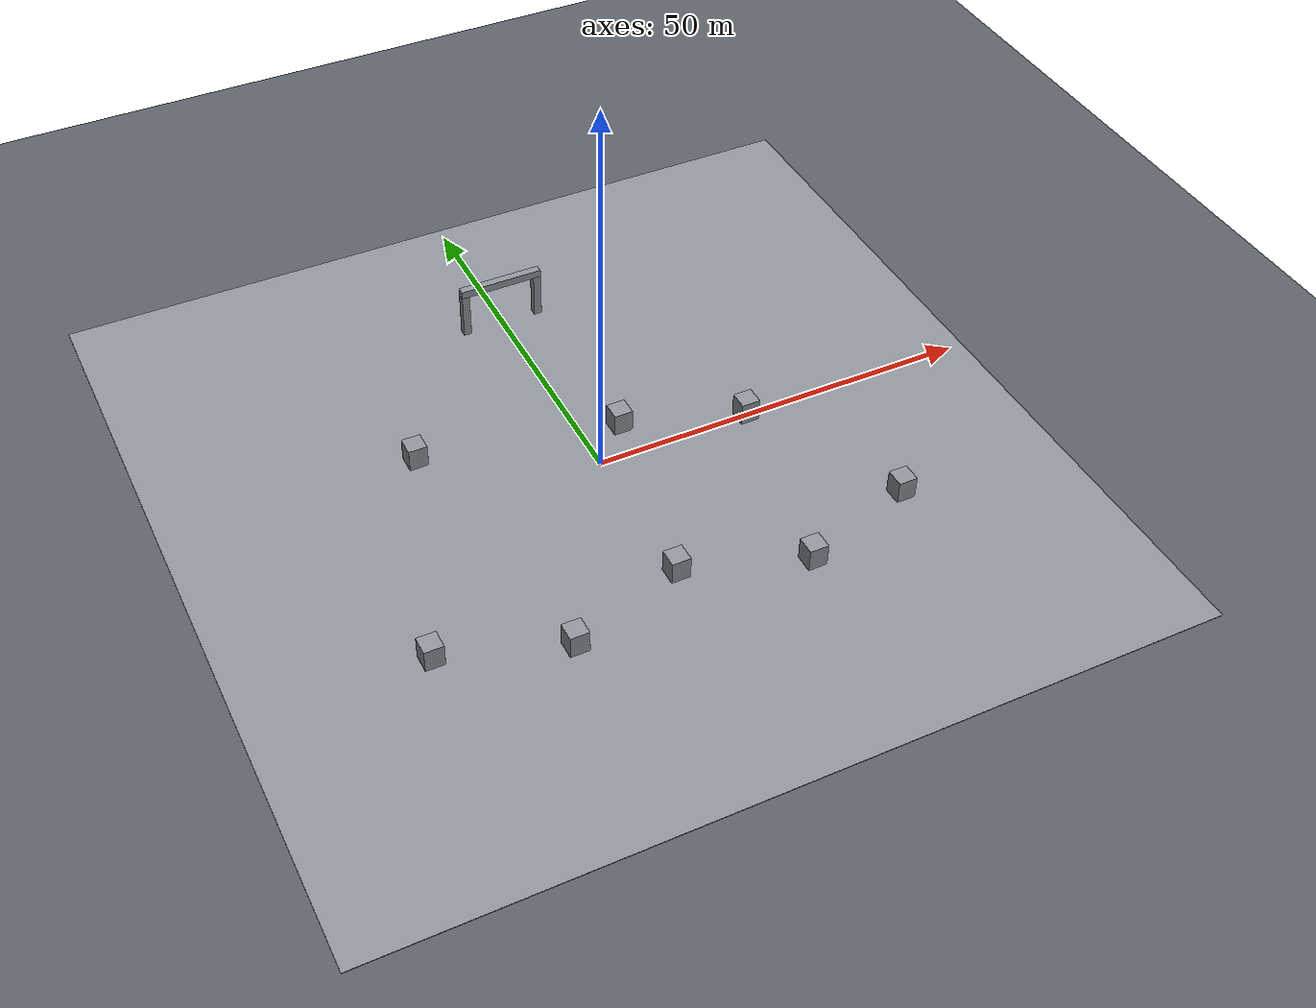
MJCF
<!-- Generated by robot_lab_maps/tools/gen_mjcf_worlds.py from
     maps/aerial_course/worlds/aerial_course.world - do not edit by hand. -->
<mujoco model="aerial_course">
  <option gravity="0 0 -9.81" />
  <compiler angle="radian" />
  <worldbody>
    <geom type="plane" size="100 100 0.1" contype="0" conaffinity="0" rgba="0.35 0.37 0.4 1" />
    <geom pos="0 0 -0.05" quat="1 0 0 0" rgba="0.55 0.57 0.6 1" type="box" size="52 52 0.05" />
    <geom pos="-30 -20 1.5" quat="1 0 0 0" rgba="0.55 0.57 0.6 1" type="box" size="1.2 1.2 1.5" />
    <geom pos="-15 -25 1.5" quat="1 0 0 0" rgba="0.55 0.57 0.6 1" type="box" size="1.2 1.2 1.5" />
    <geom pos="0 -20 1.5" quat="1 0 0 0" rgba="0.55 0.57 0.6 1" type="box" size="1.2 1.2 1.5" />
    <geom pos="15 -25 1.5" quat="1 0 0 0" rgba="0.55 0.57 0.6 1" type="box" size="1.2 1.2 1.5" />
    <geom pos="30 -20 1.5" quat="1 0 0 0" rgba="0.55 0.57 0.6 1" type="box" size="1.2 1.2 1.5" />
    <geom pos="20 0 1.5" quat="1 0 0 0" rgba="0.55 0.57 0.6 1" type="box" size="1.2 1.2 1.5" />
    <geom pos="5 5 1.5" quat="1 0 0 0" rgba="0.55 0.57 0.6 1" type="box" size="1.2 1.2 1.5" />
    <geom pos="-20 10 1.5" quat="1 0 0 0" rgba="0.55 0.57 0.6 1" type="box" size="1.2 1.2 1.5" />
    <geom pos="-5 30 3" quat="1 0 0 0" rgba="0.55 0.57 0.6 1" type="box" size="0.5 0.5 3" />
    <geom pos="5 30 3" quat="1 0 0 0" rgba="0.55 0.57 0.6 1" type="box" size="0.5 0.5 3" />
    <geom pos="0 30 6.5" quat="1 0 0 0" rgba="0.55 0.57 0.6 1" type="box" size="5.5 0.5 0.5" />
    <light diffuse="0.8 0.8 0.8" pos="0 0 10" dir="0 0 -1" castshadow="true" />
    <light diffuse="0.3 0.3 0.3" pos="0 -6 6" dir="0 1 -1" />
  </worldbody>
</mujoco>
